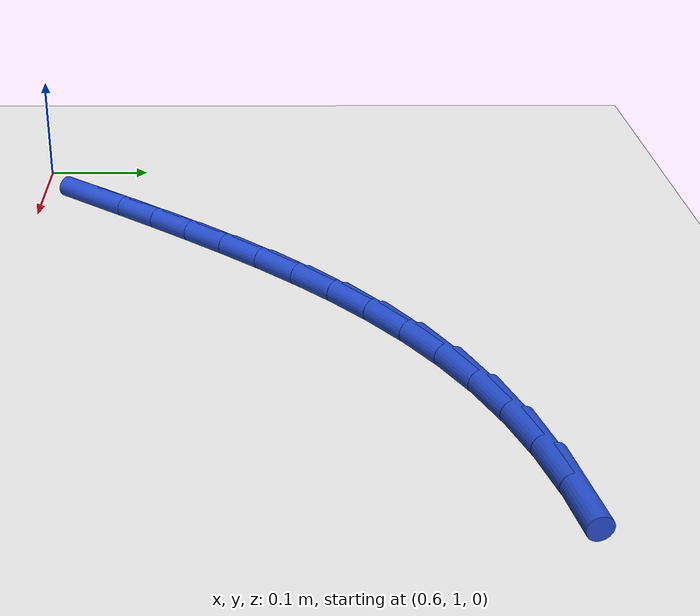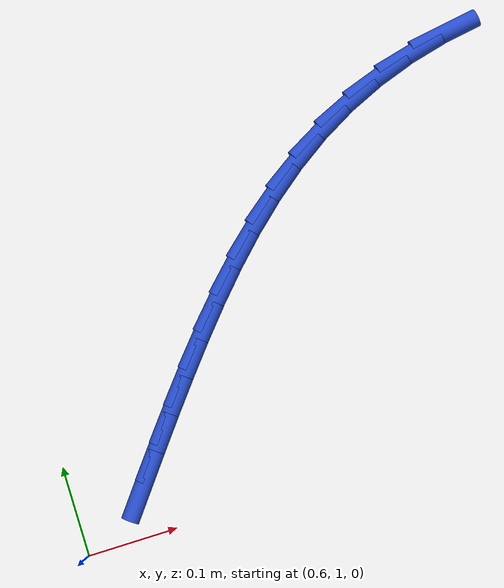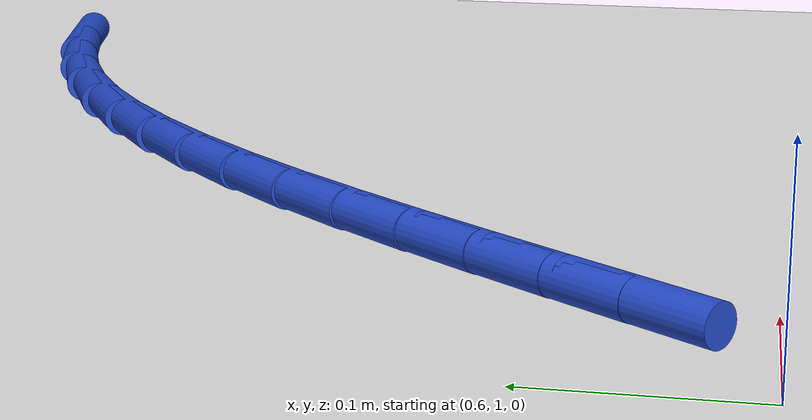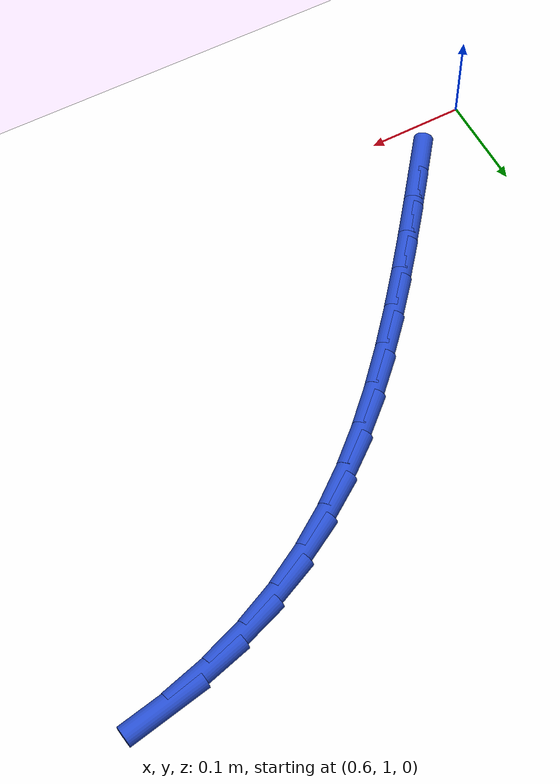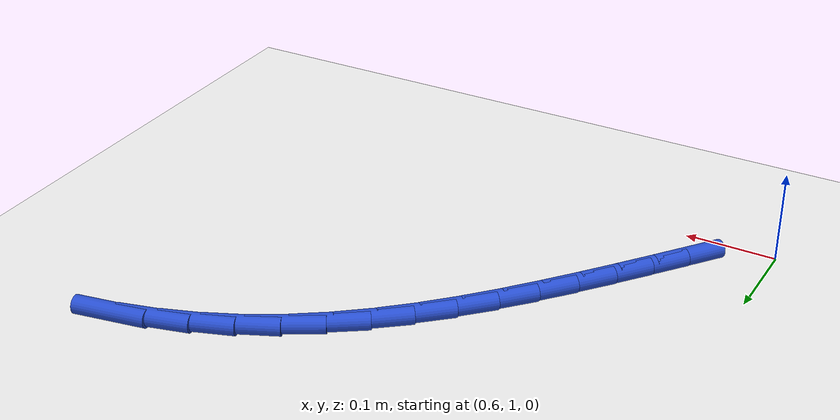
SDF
<sdf version="1.6">
 <world name="default">
  <model name="ground_plane">
   <static>1</static>
   <link name="link">
    <collision name="collision">
     <geometry><plane><normal>0 0 1</normal><size>100 100</size></plane></geometry>
     <surface><friction><ode><mu>100</mu><mu2>50</mu2></ode></friction></surface>
    </collision>
    <visual name="visual">
     <cast_shadows>0</cast_shadows>
     <geometry><plane><normal>0 0 1</normal><size>100 100</size></plane></geometry>
     <material>
      <script><uri>file://media/materials/scripts/gazebo.material</uri><name>Gazebo/WhiteGlow</name></script>
     </material>
    </visual>
   </link>
  </model>
  <model name="line">
   <link name="link_30">
    <pose>0.6786186132161524 1.0550827033311938 0.01 0 1.57 0.9185428458880102</pose>
    <collision name="collision">
     <geometry><cylinder><radius>0.01</radius><length>0.08</length></cylinder></geometry>
    </collision>
    <visual name="visual">
     <material>
      <script><name>Gazebo/Blue</name><uri>file://media/materials/scripts/gazebo.material</uri></script>
     </material>
     <geometry><cylinder><radius>0.01</radius><length>0.08</length></cylinder></geometry>
    </visual>
   </link>
   <link name="link_31">
    <pose>0.7047379166851168 1.0892807342090671 0.01 0 1.57 0.9109688613331384</pose>
    <collision name="collision">
     <geometry><cylinder><radius>0.01</radius><length>0.08</length></cylinder></geometry>
    </collision>
    <visual name="visual">
     <material>
      <script><name>Gazebo/Blue</name><uri>file://media/materials/scripts/gazebo.material</uri></script>
     </material>
     <geometry><cylinder><radius>0.01</radius><length>0.08</length></cylinder></geometry>
    </visual>
   </link>
   <link name="link_32">
    <pose>0.7311825330377906 1.1233663815618808 0.01 0 1.57 0.8993831275105147</pose>
    <collision name="collision">
     <geometry><cylinder><radius>0.01</radius><length>0.08</length></cylinder></geometry>
    </collision>
    <visual name="visual">
     <material>
      <script><name>Gazebo/Blue</name><uri>file://media/materials/scripts/gazebo.material</uri></script>
     </material>
     <geometry><cylinder><radius>0.01</radius><length>0.08</length></cylinder></geometry>
    </visual>
   </link>
   <link name="link_33">
    <pose>0.7581092496542342 1.15725535059642 0.01 0 1.57 0.8835134176179522</pose>
    <collision name="collision">
     <geometry><cylinder><radius>0.01</radius><length>0.08</length></cylinder></geometry>
    </collision>
    <visual name="visual">
     <material>
      <script><name>Gazebo/Blue</name><uri>file://media/materials/scripts/gazebo.material</uri></script>
     </material>
     <geometry><cylinder><radius>0.01</radius><length>0.08</length></cylinder></geometry>
    </visual>
   </link>
   <link name="link_34">
    <pose>0.7856785567800937 1.190844571792792 0.01 0 1.57 0.8600492522311644</pose>
    <collision name="collision">
     <geometry><cylinder><radius>0.01</radius><length>0.08</length></cylinder></geometry>
    </collision>
    <visual name="visual">
     <material>
      <script><name>Gazebo/Blue</name><uri>file://media/materials/scripts/gazebo.material</uri></script>
     </material>
     <geometry><cylinder><radius>0.01</radius><length>0.08</length></cylinder></geometry>
    </visual>
   </link>
   <link name="link_35">
    <pose>0.8140873707989972 1.223846283324869 0.01 0 1.57 0.826936648480917</pose>
    <collision name="collision">
     <geometry><cylinder><radius>0.01</radius><length>0.08</length></cylinder></geometry>
    </collision>
    <visual name="visual">
     <material>
      <script><name>Gazebo/Blue</name><uri>file://media/materials/scripts/gazebo.material</uri></script>
     </material>
     <geometry><cylinder><radius>0.01</radius><length>0.08</length></cylinder></geometry>
    </visual>
   </link>
   <link name="link_36">
    <pose>0.8435533051634754 1.255867782530097 0.01 0 1.57 0.7838745705546857</pose>
    <collision name="collision">
     <geometry><cylinder><radius>0.01</radius><length>0.08</length></cylinder></geometry>
    </collision>
    <visual name="visual">
     <material>
      <script><name>Gazebo/Blue</name><uri>file://media/materials/scripts/gazebo.material</uri></script>
     </material>
     <geometry><cylinder><radius>0.01</radius><length>0.08</length></cylinder></geometry>
    </visual>
   </link>
   <link name="link_37">
    <pose>0.8742942116779341 1.2865151582247802 0.01 0 1.57 0.7305649361996965</pose>
    <collision name="collision">
     <geometry><cylinder><radius>0.01</radius><length>0.08</length></cylinder></geometry>
    </collision>
    <visual name="visual">
     <material>
      <script><name>Gazebo/Blue</name><uri>file://media/materials/scripts/gazebo.material</uri></script>
     </material>
     <geometry><cylinder><radius>0.01</radius><length>0.08</length></cylinder></geometry>
    </visual>
   </link>
   <link name="link_38">
    <pose>0.9065279421467807 1.3153944992252238 0.01 0 1.57 0.6668209497076089</pose>
    <collision name="collision">
     <geometry><cylinder><radius>0.01</radius><length>0.08</length></cylinder></geometry>
    </collision>
    <visual name="visual">
     <material>
      <script><name>Gazebo/Blue</name><uri>file://media/materials/scripts/gazebo.material</uri></script>
     </material>
     <geometry><cylinder><radius>0.01</radius><length>0.08</length></cylinder></geometry>
    </visual>
   </link>
   <link name="link_39">
    <pose>0.9404723483744215 1.3421118943477321 0.01 0 1.57 0.5927398882752486</pose>
    <collision name="collision">
     <geometry><cylinder><radius>0.01</radius><length>0.08</length></cylinder></geometry>
    </collision>
    <visual name="visual">
     <material>
      <script><name>Gazebo/Blue</name><uri>file://media/materials/scripts/gazebo.material</uri></script>
     </material>
     <geometry><cylinder><radius>0.01</radius><length>0.08</length></cylinder></geometry>
    </visual>
   </link>
   <link name="link_40">
    <pose>0.9763452821652637 1.366273432408611 0.01 0 1.57 0.5089041774875436</pose>
    <collision name="collision">
     <geometry><cylinder><radius>0.01</radius><length>0.08</length></cylinder></geometry>
    </collision>
    <visual name="visual">
     <material>
      <script><name>Gazebo/Blue</name><uri>file://media/materials/scripts/gazebo.material</uri></script>
     </material>
     <geometry><cylinder><radius>0.01</radius><length>0.08</length></cylinder></geometry>
    </visual>
   </link>
   <link name="link_41">
    <pose>1.0143645953237137 1.3874852022241648 0.01 0 1.57 0.41806926688751783</pose>
    <collision name="collision">
     <geometry><cylinder><radius>0.01</radius><length>0.08</length></cylinder></geometry>
    </collision>
    <visual name="visual">
     <material>
      <script><name>Gazebo/Blue</name><uri>file://media/materials/scripts/gazebo.material</uri></script>
     </material>
     <geometry><cylinder><radius>0.01</radius><length>0.08</length></cylinder></geometry>
    </visual>
   </link>
   <link name="link_42">
    <pose>1.0546754392531716 1.4053936479595435 0.01 0 1.57 0.3299075125731556</pose>
    <collision name="collision">
     <geometry><cylinder><radius>0.01</radius><length>0.08</length></cylinder></geometry>
    </collision>
    <visual name="visual">
     <material>
      <script><name>Gazebo/Blue</name><uri>file://media/materials/scripts/gazebo.material</uri></script>
     </material>
     <geometry><cylinder><radius>0.01</radius><length>0.08</length></cylinder></geometry>
    </visual>
   </link>
   <link name="link_43">
    <pose>1.0969927680059188 1.4198840125201544 0.01 0 1.57 0.24658156210344415</pose>
    <collision name="collision">
     <geometry><cylinder><radius>0.01</radius><length>0.08</length></cylinder></geometry>
    </collision>
    <visual name="visual">
     <material>
      <script><name>Gazebo/Blue</name><uri>file://media/materials/scripts/gazebo.material</uri></script>
     </material>
     <geometry><cylinder><radius>0.01</radius><length>0.08</length></cylinder></geometry>
    </visual>
   </link>
   <link name="link_44">
    <pose>1.1408738780967633 1.4309290531144168 0.01 0 1.57 0.16671103317510894</pose>
    <collision name="collision">
     <geometry><cylinder><radius>0.01</radius><length>0.08</length></cylinder></geometry>
    </collision>
    <visual name="visual">
     <material>
      <script><name>Gazebo/Blue</name><uri>file://media/materials/scripts/gazebo.material</uri></script>
     </material>
     <geometry><cylinder><radius>0.01</radius><length>0.08</length></cylinder></geometry>
    </visual>
   </link>
  </model>
 </world>
</sdf>
